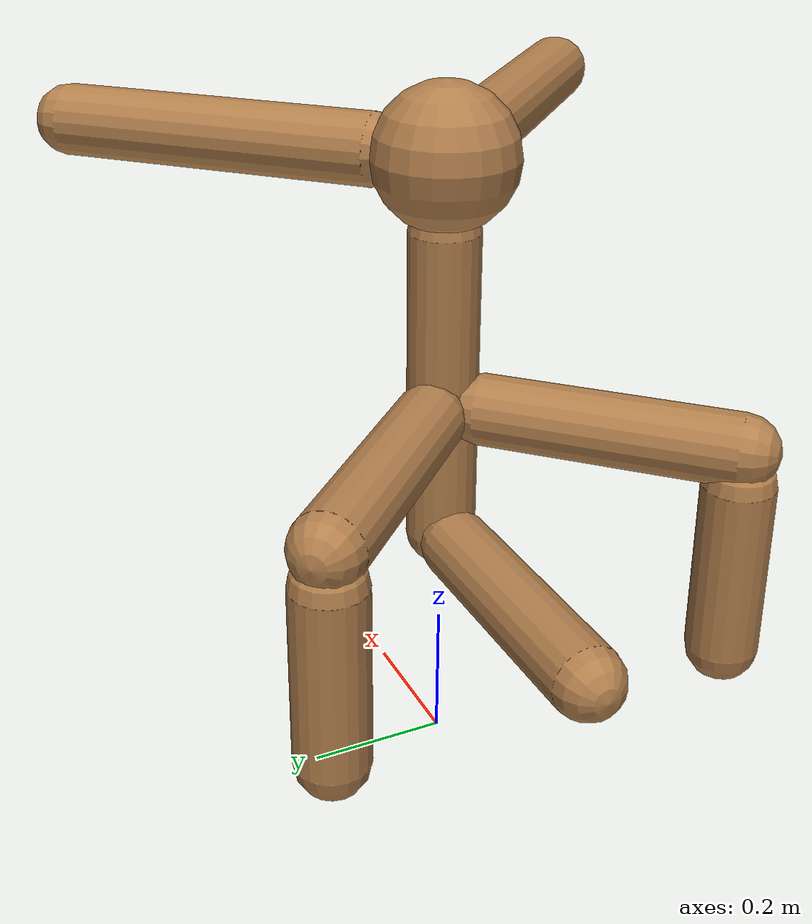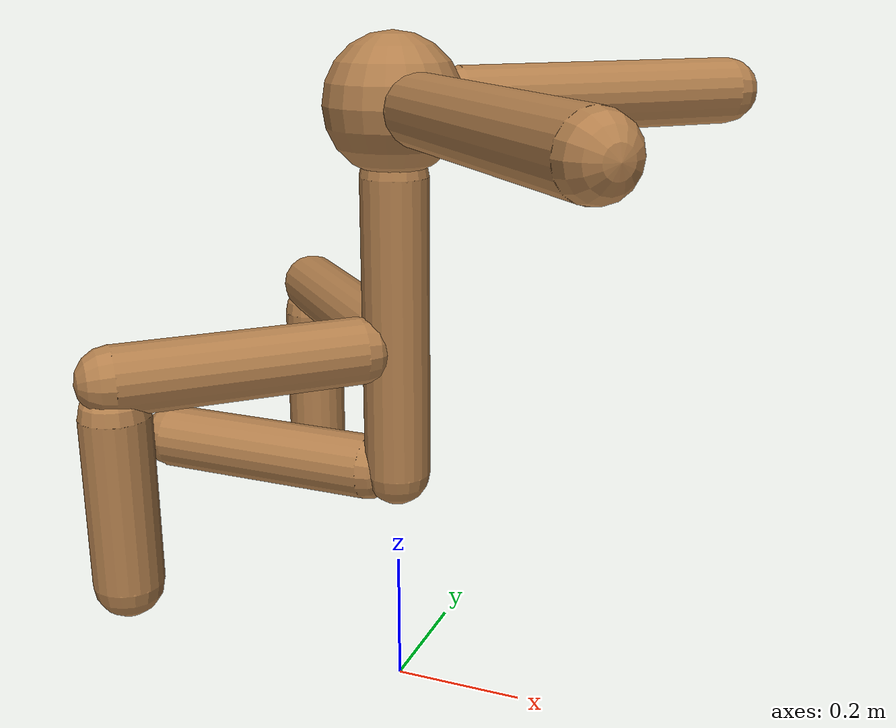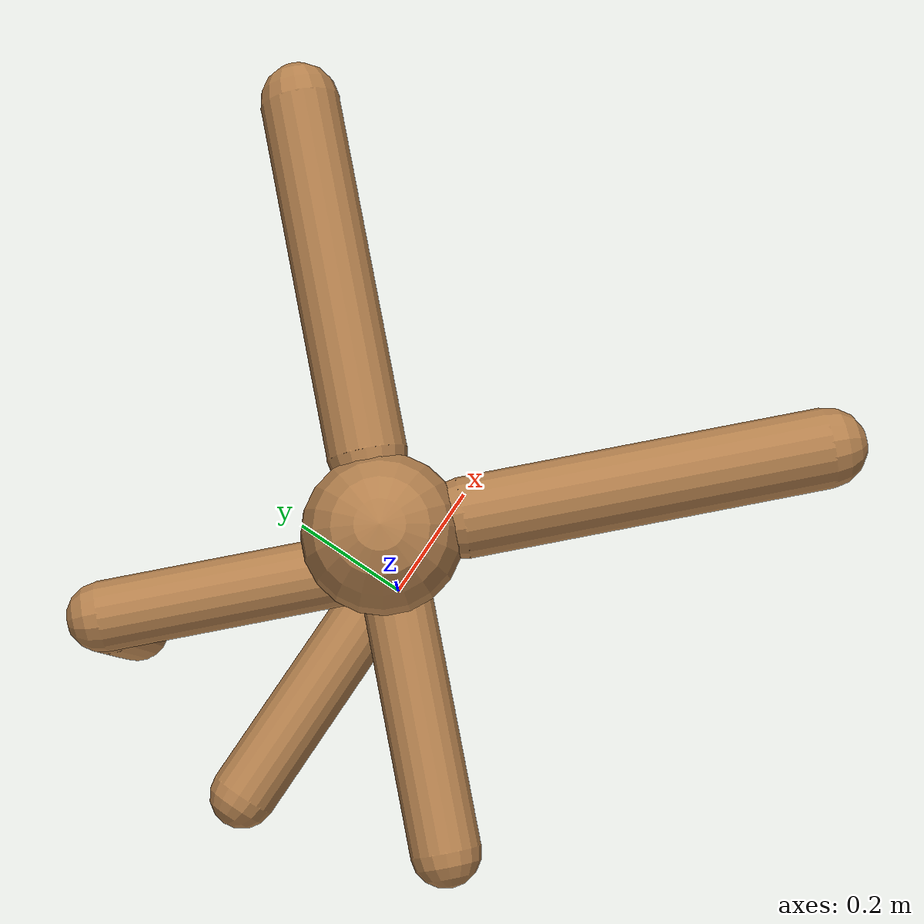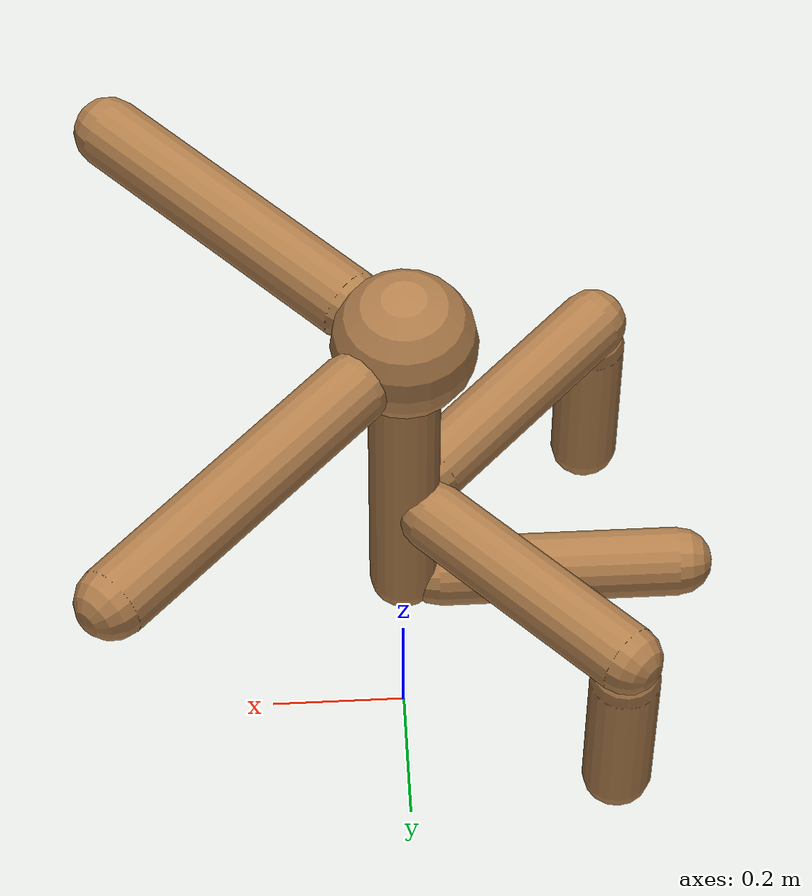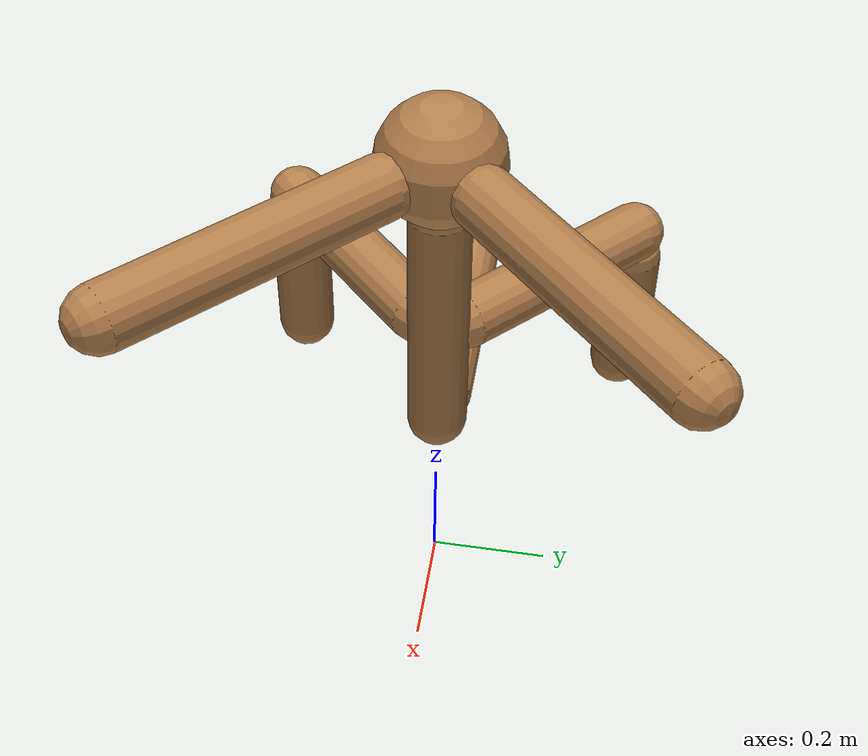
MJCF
<?xml version='1.0' encoding='UTF-8'?>
<!-- Universal Animal Template: unimal -->
<mujoco model="unimal">
  <compiler angle="degree"/>
  <size njmax="2000" nconmax="500"/>
  <option timestep=".005">
    <flag filterparent="disable"/>
  </option>
  <!-- Common defaults to make search space tractable -->
  <default>
    <!-- Define motor defaults -->
    <motor ctrlrange="-1 1" ctrllimited="true"/>
    <!-- Define joint defaults -->
    <default class="normal_joint">
      <joint type="hinge" damping="1" stiffness="1" armature="1" limited="true" range="-120 120" solimplimit="0 0.99 0.01"/>
    </default>
    <default class="walker_joint">
      <joint type="hinge" damping="0.2" stiffness="1" armature=".01" limited="true" range="-120 120" solimplimit="0 0.99 0.01"/>
    </default>
    <default class="stiff_joint">
      <joint type="hinge" damping="5" stiffness="10" armature=".01" limited="true" solimplimit="0 0.99 0.01"/>
    </default>
    <default class="free">
      <joint limited="false" damping="0" armature="0" stiffness="0"/>
    </default>
    <default class="growth_site">
      <site size="1e-6 1e-6 1e-6"/>
    </default>
    <default class="torso_growth_site">
      <site size="1e-6 1e-6 1e-6"/>
    </default>
    <default class="mirror_growth_site">
      <site size="1e-6 1e-6 1e-6"/>
    </default>
    <default class="btm_pos_site">
      <site size="1e-6 1e-6 1e-6"/>
    </default>
    <default class="box_face_site">
      <site size="1e-6 1e-6 1e-6"/>
    </default>
    <default class="imu_vel">
      <site type="box" size="0.05" rgba="1 0 0 0"/>
    </default>
    <default class="touch_site">
      <site group="3" rgba="0 0 1 .3"/>
    </default>
    <default class="food_site">
      <site material="food" size="0.15"/>
    </default>
    <!-- Define geom defaults -->
    <geom type="capsule" condim="3" friction="0.7 0.1 0.1" material="self"/>
  </default>
  <worldbody>
    <light diffuse="1 1 1" directional="true" exponent="1" pos="0 0 8" specular="0.1 0.1 0.1" dir="0 0 -1"/>
    <!-- Programatically generated xml goes here -->
    <body name="torso/0" pos="0 0 0.9">
      <joint name="root" type="free" class="free"/>
      <site name="root" class="imu_vel"/>
      <geom name="torso/0" type="sphere" size="0.1" condim="3" density="600"/>
      <camera name="side" pos="0 -7 2" xyaxes="1 0 0 0 1 2" mode="trackcom"/>
      <site name="torso/0" class="growth_site" pos="0 0 0"/>
      <site name="torso/btm_pos/0" class="btm_pos_site" pos="0 0 -0.1"/>
      <site name="torso/touch/0" class="touch_site" size="0.11"/>
      <site name="torso/horizontal_y/0" class="torso_growth_site" pos="-0.1 0 0"/>
      <body name="limb/0" pos="0.0 0.0 -0.1">
        <joint name="limby/0" type="hinge" class="normal_joint" range="-90 0" pos="0.0 0.0 0.05" axis="0.0 1.0 0.0"/>
        <geom name="limb/0" type="capsule" fromto="0.0 0.0 0.0 0.0 0.0 -0.45" size="0.05" density="500"/>
        <site name="limb/mid/0" class="growth_site" pos="0.0 0.0 -0.25"/>
        <site name="limb/btm/0" class="growth_site" pos="0.0 0.0 -0.45"/>
        <site name="limb/btm_pos/0" class="btm_pos_site" pos="0.0 0.0 -0.45"/>
        <site name="limb/touch/0" class="touch_site" size="0.060000000000000005" fromto="0.0 0.0 0.0 0.0 0.0 -0.45" type="capsule"/>
        <body name="limb/13" pos="-0.05 0.0 -0.45">
          <joint name="limby/13" type="hinge" class="normal_joint" range="0 30" pos="0.05 0.0 0.0" axis="0.0 1.0 0.0"/>
          <geom name="limb/13" type="capsule" fromto="0.0 0.0 0.0 -0.35 0.0 0.0" size="0.05" density="500"/>
          <site name="limb/mid/13" class="growth_site" pos="-0.2 0.0 0.0"/>
          <site name="limb/btm/13" class="growth_site" pos="-0.35 0.0 0.0"/>
          <site name="limb/btm_pos/13" class="btm_pos_site" pos="-0.4 0.0 0.0"/>
          <site name="limb/touch/13" class="touch_site" size="0.060000000000000005" fromto="0.0 0.0 0.0 -0.35 0.0 0.0" type="capsule"/>
        </body>
        <body name="limb/28" pos="-0.04 0.04 -0.25">
          <joint name="limbx/28" type="hinge" class="normal_joint" range="-60 30" pos="0.04 -0.04 0.0" axis="0.5 0.5 -0.7071"/>
          <geom name="limb/28" type="capsule" fromto="0.0 0.0 0.0 -0.25 0.25 0.0" size="0.05" density="500"/>
          <site name="limb/mid/28" class="mirror_growth_site" pos="-0.14 0.14 0.0"/>
          <site name="limb/btm/28" class="mirror_growth_site" pos="-0.25 0.25 0.0"/>
          <site name="limb/btm_pos/28" class="btm_pos_site" pos="-0.28 0.28 0.0"/>
          <site name="limb/touch/28" class="touch_site" size="0.060000000000000005" fromto="0.0 0.0 0.0 -0.25 0.25 0.0" type="capsule"/>
          <body name="limb/30" pos="-0.25 0.25 -0.05">
            <joint name="limbx/30" type="hinge" class="normal_joint" range="-30 30" pos="0.0 0.0 0.05" axis="1.0 0.0 0.0"/>
            <geom name="limb/30" type="capsule" fromto="0.0 0.0 0.0 0.0 0.0 -0.25" size="0.05" density="500"/>
            <site name="limb/mid/30" class="mirror_growth_site" pos="0.0 0.0 -0.15"/>
            <site name="limb/btm/30" class="mirror_growth_site" pos="0.0 0.0 -0.25"/>
            <site name="limb/btm_pos/30" class="btm_pos_site" pos="0.0 0.0 -0.3"/>
            <site name="limb/touch/30" class="touch_site" size="0.060000000000000005" fromto="0.0 0.0 0.0 0.0 0.0 -0.25" type="capsule"/>
          </body>
        </body>
        <body name="limb/29" pos="-0.04 -0.04 -0.25">
          <joint name="limbx/29" type="hinge" class="normal_joint" range="-60 30" pos="0.04 0.04 0.0" axis="0.5 -0.5 -0.7071"/>
          <geom name="limb/29" type="capsule" fromto="0.0 0.0 0.0 -0.25 -0.25 0.0" size="0.05" density="500"/>
          <site name="limb/mid/29" class="mirror_growth_site" pos="-0.14 -0.14 0.0"/>
          <site name="limb/btm/29" class="mirror_growth_site" pos="-0.25 -0.25 0.0"/>
          <site name="limb/btm_pos/29" class="btm_pos_site" pos="-0.28 -0.28 0.0"/>
          <site name="limb/touch/29" class="touch_site" size="0.060000000000000005" fromto="0.0 0.0 0.0 -0.25 -0.25 0.0" type="capsule"/>
          <body name="limb/31" pos="-0.25 -0.25 -0.05">
            <joint name="limbx/31" type="hinge" class="normal_joint" range="-30 30" pos="0.0 0.0 0.05" axis="1.0 0.0 0.0"/>
            <geom name="limb/31" type="capsule" fromto="0.0 0.0 0.0 0.0 0.0 -0.25" size="0.05" density="500"/>
            <site name="limb/mid/31" class="mirror_growth_site" pos="0.0 0.0 -0.15"/>
            <site name="limb/btm/31" class="mirror_growth_site" pos="0.0 0.0 -0.25"/>
            <site name="limb/btm_pos/31" class="btm_pos_site" pos="0.0 0.0 -0.3"/>
            <site name="limb/touch/31" class="touch_site" size="0.060000000000000005" fromto="0.0 0.0 0.0 0.0 0.0 -0.25" type="capsule"/>
          </body>
        </body>
      </body>
      <body name="limb/22" pos="0.07 0.07 0.0">
        <joint name="limbx/22" type="hinge" class="normal_joint" range="-30 0" pos="-0.04 -0.04 0.0" axis="0.5 -0.5 0.7071"/>
        <joint name="limby/22" type="hinge" class="normal_joint" range="-45 0" pos="-0.04 -0.04 0.0" axis="-0.5 0.5 0.7071"/>
        <geom name="limb/22" type="capsule" fromto="0.0 0.0 0.0 0.32 0.32 0.0" size="0.05" density="500"/>
        <site name="limb/mid/22" class="mirror_growth_site" pos="0.18 0.18 0.0"/>
        <site name="limb/btm/22" class="mirror_growth_site" pos="0.32 0.32 0.0"/>
        <site name="limb/btm_pos/22" class="btm_pos_site" pos="0.32 0.32 0.0"/>
        <site name="limb/touch/22" class="touch_site" size="0.060000000000000005" fromto="0.0 0.0 0.0 0.32 0.32 0.0" type="capsule"/>
      </body>
      <body name="limb/23" pos="0.07 -0.07 0.0">
        <joint name="limbx/23" type="hinge" class="normal_joint" range="-30 0" pos="-0.04 0.04 0.0" axis="0.5 0.5 0.7071"/>
        <joint name="limby/23" type="hinge" class="normal_joint" range="-45 0" pos="-0.04 0.04 0.0" axis="0.5 0.5 -0.7071"/>
        <geom name="limb/23" type="capsule" fromto="0.0 0.0 0.0 0.32 -0.32 0.0" size="0.05" density="500"/>
        <site name="limb/mid/23" class="mirror_growth_site" pos="0.18 -0.18 0.0"/>
        <site name="limb/btm/23" class="mirror_growth_site" pos="0.32 -0.32 0.0"/>
        <site name="limb/btm_pos/23" class="btm_pos_site" pos="0.32 -0.32 0.0"/>
        <site name="limb/touch/23" class="touch_site" size="0.060000000000000005" fromto="0.0 0.0 0.0 0.32 -0.32 0.0" type="capsule"/>
      </body>
    </body>
  </worldbody>
  <actuator>
    <motor joint="limby/0" gear="150" name="limby/0"/>
    <motor joint="limby/13" gear="300" name="limby/13"/>
    <motor joint="limbx/28" gear="250" name="limbx/28"/>
    <motor joint="limbx/30" gear="200" name="limbx/30"/>
    <motor joint="limbx/29" gear="250" name="limbx/29"/>
    <motor joint="limbx/31" gear="200" name="limbx/31"/>
    <motor joint="limbx/22" gear="150" name="limbx/22"/>
    <motor joint="limby/22" gear="300" name="limby/22"/>
    <motor joint="limbx/23" gear="150" name="limbx/23"/>
    <motor joint="limby/23" gear="300" name="limby/23"/>
  </actuator>
  <sensor>
    <accelerometer name="torso_accel" site="root"/>
    <gyro name="torso_gyro" site="root"/>
    <velocimeter name="torso_vel" site="root"/>
    <subtreeangmom name="unimal_am" body="torso/0"/>
    <touch name="torso/0" site="torso/touch/0"/>
    <touch name="limb/0" site="limb/touch/0"/>
    <touch name="limb/13" site="limb/touch/13"/>
    <touch name="limb/28" site="limb/touch/28"/>
    <touch name="limb/30" site="limb/touch/30"/>
    <touch name="limb/29" site="limb/touch/29"/>
    <touch name="limb/31" site="limb/touch/31"/>
    <touch name="limb/22" site="limb/touch/22"/>
    <touch name="limb/23" site="limb/touch/23"/>
  </sensor>
  <!-- Add hfield assets -->
  <asset/>
  <!-- List of contacts to exclude -->
  <contact>
    <exclude name="limb/28:limb/29" body1="limb/28" body2="limb/29"/>
  </contact>
  <!-- Define material, texture etc -->
  <asset>
    <material name="grid" texture="grid" texrepeat="1 1" texuniform="true" reflectance="0.1"/>
    <material name="hfield" texture="hfield" texrepeat="1 1" texuniform="true" reflectance="0.1"/>
    <material name="wall" texture="wall" texrepeat="1 1" texuniform="true" reflectance=".5"/>
    <material name="platform" texture="platform" texrepeat="1 1" texuniform="true" reflectance=".5"/>
    <material name="boundary" texture="boundary" texrepeat="1 1" texuniform="true" reflectance=".5"/>
    <material name="jump" texture="jump" texrepeat="1 1" texuniform="true" reflectance=".5"/>
    <material name="goal" rgba="1 0 0 1"/>
    <material name="food" rgba="0 0 1 1" emission="1"/>
    <material name="init_position" rgba="0 1 0 0.7"/>
    <material name="self" rgba=".7 .5 .3 1"/>
    <material name="self_invisible" rgba=".7 .5 .3 0"/>
    <material name="self_default" rgba=".7 .5 .3 1"/>
    <material name="self_highlight" rgba="0 .5 .3 1"/>
    <material name="effector" rgba=".7 .4 .2 1"/>
    <material name="effector_default" rgba=".7 .4 .2 1"/>
    <material name="effector_highlight" rgba="0 .5 .3 1"/>
    <material name="decoration" rgba=".3 .5 .7 1"/>
    <material name="eye" rgba="0 .2 1 1"/>
    <material name="target" rgba=".6 .3 .3 1"/>
    <material name="target_default" rgba=".6 .3 .3 1"/>
    <material name="target_highlight" rgba=".6 .3 .3 .4"/>
    <material name="site" rgba=".5 .5 .5 .3"/>
    <material name="ball" texture="ball"/>
  </asset>
  <asset>
    <texture name="grid" type="2d" builtin="checker" rgb1="0.4 0.4 0.4" rgb2="0.4 0.4 0.4" width="300" height="300" mark="edge" markrgb="0.2 0.2 0.2"/>
    <texture name="hfield" type="2d" builtin="checker" rgb1="0.4 0.4 0.4" rgb2="0.4 0.4 0.4" width="300" height="300" mark="edge" markrgb="0.2 0.2 0.2"/>
    <texture name="wall" type="2d" builtin="flat" rgb1="0.9 0.7 0" rgb2="0.9 0.7 0" width="300" height="300"/>
    <texture name="platform" type="2d" builtin="flat" rgb1="0.3 0 0.8" rgb2="0.3 0 0.8" width="300" height="300"/>
    <texture name="boundary" type="2d" builtin="flat" rgb1="0.3 0.3 0.3" rgb2="0.3 0.3 0.3" width="300" height="300"/>
    <texture name="jump" type="2d" builtin="flat" rgb1="0.3 0.3 0.3" rgb2="0.3 0.3 0.3" width="300" height="300"/>
    <texture name="skybox" type="skybox" builtin="gradient" rgb1="1 1 1" rgb2="0.6 0.6 0.6" width="800" height="800"/>
    <texture name="ball" builtin="checker" mark="cross" width="151" height="151" rgb1="0.1 0.1 0.1" rgb2="0.9 0.9 0.9" markrgb="1 1 1"/>
  </asset>
  <visual>
    <headlight ambient="0.6 0.6 0.6" diffuse="0.3 0.3 0.3" specular="0 0 0"/>
    <map znear=".01" shadowclip="0.5"/>
    <quality shadowsize="16384"/>
  </visual>
</mujoco>
